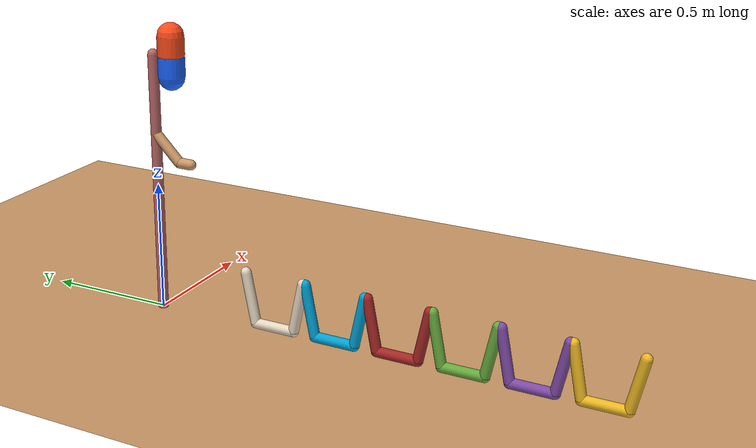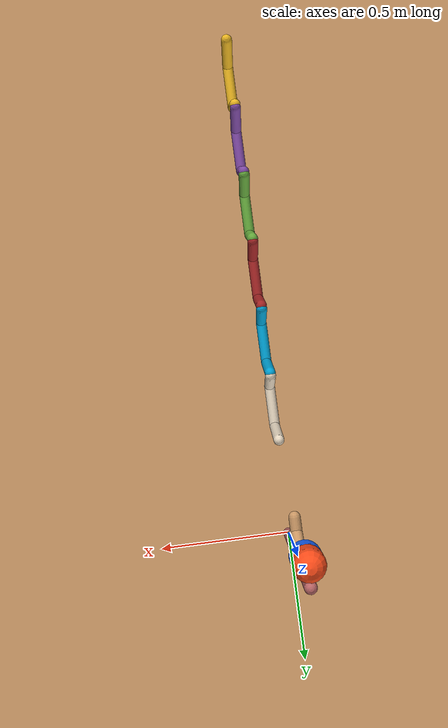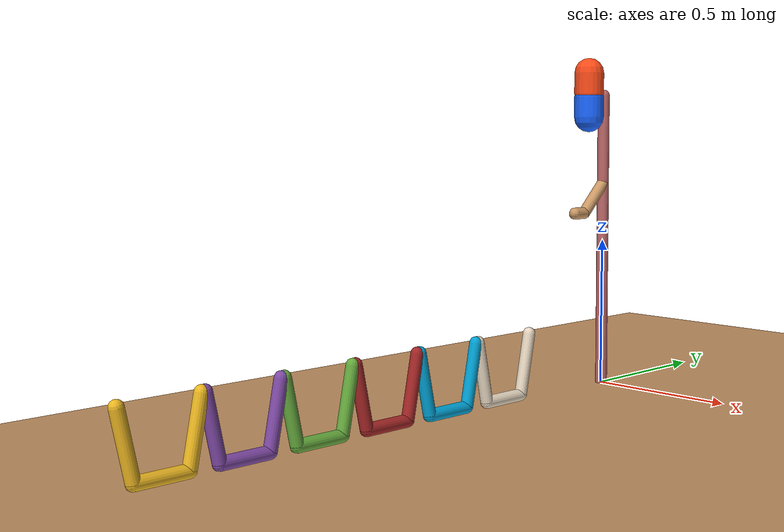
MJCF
<!-- Author: vikash@openai.com-->
<mujoco model='tosser-v1.5'>
    <compiler inertiafromgeom='auto' angle='radian'/>

    <default>
        <joint limited='true' damping='1' armature='0'/>
        <geom contype='1' conaffinity='1' condim='3' rgba='0.8 0.6 .4 1'
        	margin="0.001" solref=".02 1" solimp=".8 .8 .01" material="geom"/>
        <motor ctrlrange='-1 1'  ctrllimited='true'/>
    </default>

    <option timestep='0.002' iterations="50" solver="PGS">
        <flag energy="enable"/>
    </option>

    <visual>
        <map fogstart="3" fogend="5" force="0.1" znear="0.1"/>
        <quality shadowsize="2048"/>
        <global offwidth="800" offheight="800"/>
    </visual>

    <asset>
		<texture type="skybox" builtin="gradient" width="128" height="128" rgb1=".4 .6 .8"
            rgb2="0 0 0"/>
        <texture name="texgeom" type="cube" builtin="flat" mark="cross" width="127" height="1278"
            rgb1="0.8 0.6 0.4" rgb2="0.8 0.6 0.4" markrgb="1 1 1" random="0.01"/>
        <texture name="texplane" type="2d" builtin="checker" rgb1=".2 .3 .4" rgb2=".1 0.15 0.2"
            width="512" height="512"/>

        <material name='MatPlane' reflectance='0.5' texture="texplane" texrepeat="1 1" texuniform="true"/>
        <material name='geom' texture="texgeom" texuniform="true"/>
    </asset>

    <worldbody>
        <light directional='false' diffuse='.8 .8 .8' specular='0.3 0.3 0.3' pos='0 0 4.0' dir='0 -.15 -1'/>
		<geom name='floor' pos='0 -1 0' size='1.5 3 .125' type='plane' material="MatPlane" condim='3'/>

		<body name='wall' pos='0 0 0'>
			<geom name='wall' pos='0 0 .5' size='.02 .5' type='capsule' rgba='.73 .4 .4 1'/>
			<body name='hand' pos='0 0 0'>
				<geom name='palm' type='capsule' size='.02' fromto='0 0 .7 0 -.1 .6'/>
				<geom name='finger' type='capsule' size='.02' fromto='0 -.1 .6 0 -.15 .6'/>
				<joint name='wr_js' type='slide' pos='0 0 .7' axis='0 0 1' range='-.6 .25' damping='10'/>
				<joint name='wr_jr' type='hinge' pos='0 0 .7' axis='1 0 0' range='-1.57 0.8'/>
			</body>
		</body>

		<body name='obj' pos='0 -.08 1'>
			<geom name='obj' type='capsule' size='.05 .035' pos="0 0 0.04" rgba="1 .3 .1 1" mass=".7"/>
			<geom name='obj2' type='capsule' size='.0499 .035' pos="0 0 -0.04" rgba=".1 .4 1 1" mass=".7"/>
			<joint name='ballz' type='slide' axis='0 0 1' limited='false' damping='.01'/>
			<joint name='bally' type='slide' axis='0 1 0' limited='false' damping='.01'/>
			<joint name='ballx' type='hinge' axis='1 0 0' limited='false' damping='.01'/>
		</body>

		<body name='basket0' pos='0 -.5 0'>
			<geom pos='0 -.1 .12' type='capsule' size='.02 .1' rgba='0.91 0.85 0.76 1' condim='1' euler='.2 0 0'/>
			<geom pos='0  .1 .12' type='capsule' size='.02 .1' rgba='0.91 0.85 0.76 1' condim='1' euler='-.2 0 0'/>
			<geom pos='0  0 .02' type='capsule' size='.02 .08' rgba='0.91 0.85 0.76 1' condim='1' euler='1.57 0 0'/>
			<site name='t0' pos='0 0 .03' type='box' group='4' size='.02 .1 .02'/>
		</body>

		<body name='basket1' pos='0 -.75 0'>
			<geom pos='0 -.1 .12' type='capsule' size='.02 .1' rgba='0.00 0.64 0.84 1' condim='1' euler='.2 0 0'/>
			<geom pos='0  .1 .12' type='capsule' size='.02 .1' rgba='0.00 0.64 0.84 1' condim='1' euler='-.2 0 0'/>
			<geom pos='0  0 .02' type='capsule' size='.02 .08' rgba='0.00 0.64 0.84 1' condim='1' euler='1.57 0 0'/>
			<site name='t1' pos='0 0 .03' type='box' group='4' size='.02 .1 .02'/>
		</body>

		<body name='basket2' pos='0 -1 0'>
			<geom pos='0 -.1 .12' type='capsule' size='.02 .1' rgba='0.65 0.15 0.15 1' condim='1' euler='.2 0 0'/>
			<geom pos='0  .1 .12' type='capsule' size='.02 .1' rgba='0.65 0.15 0.15 1' condim='1' euler='-.2 0 0'/>
			<geom pos='0  0 .02' type='capsule' size='.02 .08' rgba='0.65 0.15 0.15 1' condim='1' euler='1.57 0 0'/>
			<site name='t2' pos='0 0 .03' type='box' group='4' size='.02 .1 .02'/>
		</body>

		<body name='basket3' pos='0 -1.25 0'>
			<geom pos='0 -.1 .12' type='capsule' size='.02 .1' rgba='0.40 0.67 0.24 1' condim='1' euler='.2 0 0'/>
			<geom pos='0  .1 .12' type='capsule' size='.02 .1' rgba='0.40 0.67 0.24 1' condim='1' euler='-.2 0 0'/>
			<geom pos='0  0 .02' type='capsule' size='.02 .08' rgba='0.40 0.67 0.24 1' condim='1' euler='1.57 0 0'/>
			<site name='t3' pos='0 0 .03' type='box' group='4' size='.02 .1 .02'/>
		</body>

		<body name='basket4' pos='0 -1.5 0'>
			<geom pos='0 -.1 .12' type='capsule' size='.02 .1' rgba='0.50 0.29 0.65 1' condim='1' euler='.2 0 0'/>
			<geom pos='0  .1 .12' type='capsule' size='.02 .1' rgba='0.50 0.29 0.65 1' condim='1' euler='-.2 0 0'/>
			<geom pos='0  0 .02' type='capsule' size='.02 .08' rgba='0.50 0.29 0.65 1' condim='1' euler='1.57 0 0'/>
			<site name='t4' pos='0 0 .03' type='box' group='4' size='.02 .1 .02'/>
		</body>

		<body name='basket5' pos='0 -1.75 0'>
			<geom pos='0 -.1 .12' type='capsule' size='.02 .1' rgba='0.93 0.72 0.13 1' condim='1' euler='.2 0 0'/>
			<geom pos='0  .1 .12' type='capsule' size='.02 .1' rgba='0.93 0.72 0.13 1' condim='1' euler='-.2 0 0'/>
			<geom pos='0  0 .02' type='capsule' size='.02 .08' rgba='0.93 0.72 0.13 1' condim='1' euler='1.57 0 0'/>
			<site name='t5' pos='0 0 .03' type='box' group='4' size='.02 .1 .02'/>
		</body>

	</worldbody>

    <actuator>
		<motor name='a1' 	gear='35' joint='wr_js'/>
		<motor name='a2'    gear='35' joint='wr_jr' />
    </actuator>

	<sensor>
		<jointpos name="Sjp_wr_js"	joint="wr_js"/>
		<jointpos name="Sjp_wr_jr"	joint="wr_jr"/>
		<touch name="s_t1"	site="t1"/>
		<touch name="s_t2"	site="t2"/>
	</sensor>

</mujoco>
